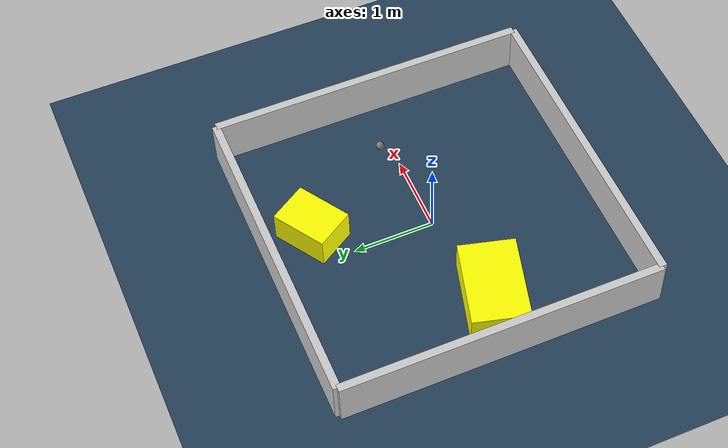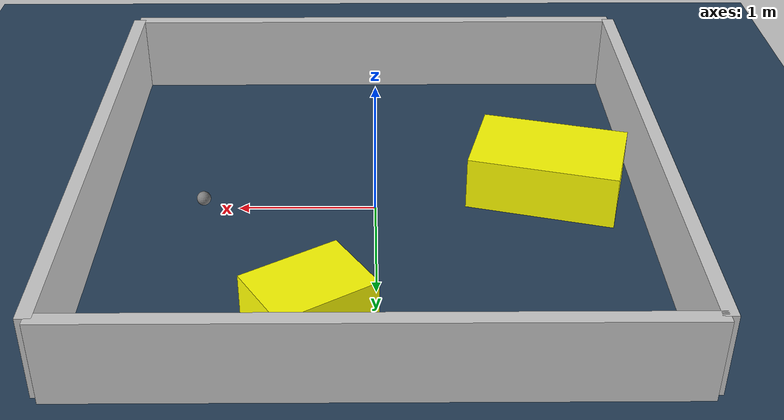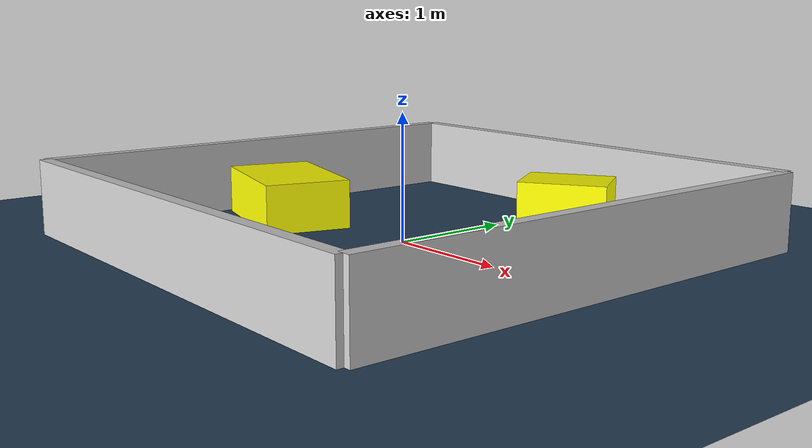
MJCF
<?xml version="1.0" ?>
<mujoco model="generated_environment">
  <option timestep="0.01" integrator="RK4" cone="elliptic"/>
  <default>
    <geom density="1"/>
  </default>
  <asset>
    <texture builtin="gradient" height="3072" rgb1="0.3 0.5 0.7" rgb2="0 0 0" type="skybox" width="512"/>
    <texture builtin="checker" height="300" mark="edge" markrgb="0.8 0.8 0.8" name="groundplane" rgb1="0.2 0.3 0.4" rgb2="0.1 0.2 0.3" type="2d" width="300"/>
    <material name="groundplane" reflectance="0.2" texrepeat="5 5" texture="groundplane" texuniform="true"/>
    <material name="robot" rgba="0.0 1.0 0.0 1"/>
  </asset>
  <worldbody>
    <light dir="0 0 -1" directional="true" pos="0 0 1.5"/>
    <geom condim="4" friction="1.0 0.005 0.001" material="groundplane" name="floor" size="0 0 0.05" type="plane"/>
    <body name="walls">
      <geom name="wall_1" condim="4" pos="-2.0 0.0 0.3" rgba="0.800000011920929 0.800000011920929 0.800000011920929 1.0" size="0.05 2.0 0.3" type="box"/>
      <geom name="wall_2" condim="4" pos="2.0 0.0 0.3" rgba="0.800000011920929 0.800000011920929 0.800000011920929 1.0" size="0.05 2.0 0.3" type="box"/>
      <geom name="wall_3" condim="4" pos="0.0 -2.0 0.3" rgba="0.800000011920929 0.800000011920929 0.800000011920929 1.0" size="2.0 0.05 0.3" type="box"/>
      <geom name="wall_4" condim="4" pos="0.0 2.0 0.3" rgba="0.800000011920929 0.800000011920929 0.800000011920929 1.0" size="2.0 0.05 0.3" type="box"/>
    </body>
    <body name="robot">
      <joint name="joint_x" type="slide" pos="0 0 0" axis="1 0 0"/>
      <joint name="joint_y" type="slide" pos="0 0 0" axis="0 1 0"/>
      <geom name="robot" type="sphere" pos="1.227419866709968 0.16571995559071429 0.2" size="0.05" mass="5." friction="1.0 0.005 0.0001" condim="4"/>
      <site name="sensor_ball"/>
    </body>
    <body name="obstacle_1_movable">
      <geom name="obstacle_1_movable" condim="4" pos="-1.279664306111734 -0.21315376704754163 0.2" euler="0 0 74.79397528764538" friction="1.0 0.005 0.001" rgba="1 1 0 1" size="0.3508701087783992 0.5417609076115433 0.2" type="box" mass="0.1"/>
      <joint type="free"/>
    </body>
    <body name="obstacle_2_movable">
      <geom name="obstacle_2_movable" condim="4" pos="0.42351713783214984 1.3789352844737661 0.2" euler="0 0 32.04241391294153" friction="1.0 0.005 0.001" rgba="1 1 0 1" size="0.3572068984432953 0.26355500242578506 0.2" type="box" mass="0.1"/>
      <joint type="free"/>
    </body>
  </worldbody>
  <actuator>
    <motor name="actuator_x" joint="joint_x" gear="1" ctrlrange="-1 1"/>
    <motor name="actuator_y" joint="joint_y" gear="1" ctrlrange="-1 1"/>
  </actuator>
</mujoco>
